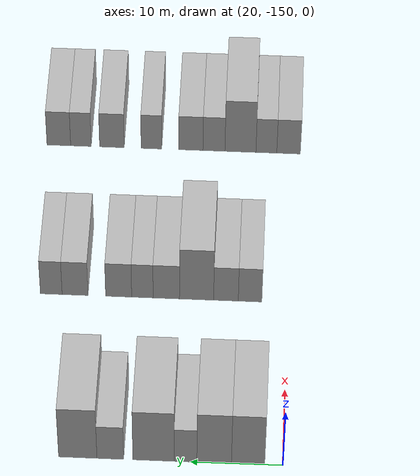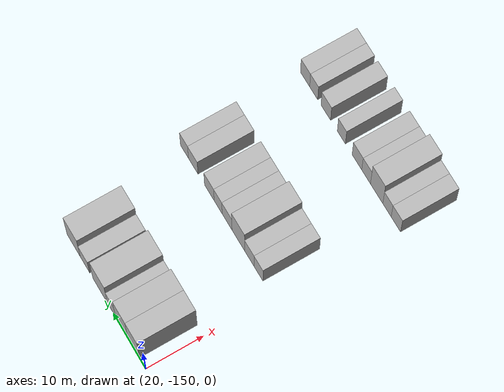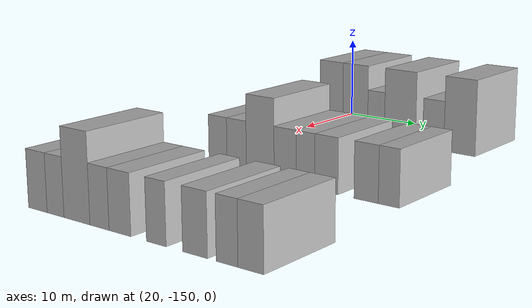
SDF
<sdf version="1.6">
 <world name="default">
  <model name="building_28">
   <static>1</static>
   <pose>25.0000 -146.2379 0 0.000000 0.000000 0.000000</pose>
   <link name="link">
    <pose>0 0 4.50 0 0 0</pose>
    <collision name="collision"><geometry><box><size>10.0000 3.6051 9.0000</size></box></geometry></collision>
    <visual name="visual">
     <cast_shadows>0</cast_shadows>
     <geometry><box><size>10.0000 3.6051 9.0000</size></box></geometry>
     <material>
      <script>
       <uri>model://HANNAS_wall/materials/scripts</uri>
       <uri>model://HANNAS_wall/materials/textures</uri>
       <name>vrc/HANNAS_wall</name>
      </script>
     </material>
    </visual>
   </link>
  </model>
  <model name="building_29">
   <static>1</static>
   <pose>25.0000 -142.5666 0 0.000000 0.000000 0.000000</pose>
   <link name="link">
    <pose>0 0 4.50 0 0 0</pose>
    <collision name="collision"><geometry><box><size>10.0000 3.7375 9.0000</size></box></geometry></collision>
    <visual name="visual">
     <cast_shadows>0</cast_shadows>
     <geometry><box><size>10.0000 3.7375 9.0000</size></box></geometry>
     <material>
      <script>
       <uri>model://HANNAS_wall/materials/scripts</uri>
       <uri>model://HANNAS_wall/materials/textures</uri>
       <name>vrc/HANNAS_wall</name>
      </script>
     </material>
    </visual>
   </link>
  </model>
  <model name="building_30">
   <static>1</static>
   <pose>25.0000 -139.4617 0 0.000000 0.000000 0.000000</pose>
   <link name="link">
    <pose>0 0 3.00 0 0 0</pose>
    <collision name="collision"><geometry><box><size>10.0000 2.4724 6.0000</size></box></geometry></collision>
    <visual name="visual">
     <cast_shadows>0</cast_shadows>
     <geometry><box><size>10.0000 2.4724 6.0000</size></box></geometry>
     <material>
      <script>
       <uri>model://HANNAS_wall/materials/scripts</uri>
       <uri>model://HANNAS_wall/materials/textures</uri>
       <name>vrc/HANNAS_wall</name>
      </script>
     </material>
    </visual>
   </link>
  </model>
  <model name="building_31">
   <static>1</static>
   <pose>25.0000 -135.9966 0 0.000000 0.000000 0.000000</pose>
   <link name="link">
    <pose>0 0 4.50 0 0 0</pose>
    <collision name="collision"><geometry><box><size>10.0000 4.4577 9.0000</size></box></geometry></collision>
    <visual name="visual">
     <cast_shadows>0</cast_shadows>
     <geometry><box><size>10.0000 4.4577 9.0000</size></box></geometry>
     <material>
      <script>
       <uri>model://HANNAS_wall/materials/scripts</uri>
       <uri>model://HANNAS_wall/materials/textures</uri>
       <name>vrc/HANNAS_wall</name>
      </script>
     </material>
    </visual>
   </link>
  </model>
  <model name="building_32">
   <static>1</static>
   <pose>25.0000 -131.3176 0 0.000000 0.000000 0.000000</pose>
   <link name="link">
    <pose>0 0 3.00 0 0 0</pose>
    <collision name="collision"><geometry><box><size>10.0000 2.9004 6.0000</size></box></geometry></collision>
    <visual name="visual">
     <cast_shadows>0</cast_shadows>
     <geometry><box><size>10.0000 2.9004 6.0000</size></box></geometry>
     <material>
      <script>
       <uri>model://HANNAS_wall/materials/scripts</uri>
       <uri>model://HANNAS_wall/materials/textures</uri>
       <name>vrc/HANNAS_wall</name>
      </script>
     </material>
    </visual>
   </link>
  </model>
  <model name="building_33">
   <static>1</static>
   <pose>25.0000 -127.7929 0 0.000000 0.000000 0.000000</pose>
   <link name="link">
    <pose>0 0 4.50 0 0 0</pose>
    <collision name="collision"><geometry><box><size>10.0000 4.1490 9.0000</size></box></geometry></collision>
    <visual name="visual">
     <cast_shadows>0</cast_shadows>
     <geometry><box><size>10.0000 4.1490 9.0000</size></box></geometry>
     <material>
      <script>
       <uri>model://HANNAS_wall/materials/scripts</uri>
       <uri>model://HANNAS_wall/materials/textures</uri>
       <name>vrc/HANNAS_wall</name>
      </script>
     </material>
    </visual>
   </link>
  </model>
  <model name="building_145">
   <static>1</static>
   <pose>47.0000 -145.7853 0 0.000000 0.000000 0.000000</pose>
   <link name="link">
    <pose>0 0 3.00 0 0 0</pose>
    <collision name="collision"><geometry><box><size>10.0000 2.6623 6.0000</size></box></geometry></collision>
    <visual name="visual">
     <cast_shadows>0</cast_shadows>
     <geometry><box><size>10.0000 2.6623 6.0000</size></box></geometry>
     <material>
      <script>
       <uri>model://HANNAS_wall/materials/scripts</uri>
       <uri>model://HANNAS_wall/materials/textures</uri>
       <name>vrc/HANNAS_wall</name>
      </script>
     </material>
    </visual>
   </link>
  </model>
  <model name="building_146">
   <static>1</static>
   <pose>47.0000 -143.0627 0 0.000000 0.000000 0.000000</pose>
   <link name="link">
    <pose>0 0 3.00 0 0 0</pose>
    <collision name="collision"><geometry><box><size>10.0000 2.7829 6.0000</size></box></geometry></collision>
    <visual name="visual">
     <cast_shadows>0</cast_shadows>
     <geometry><box><size>10.0000 2.7829 6.0000</size></box></geometry>
     <material>
      <script>
       <uri>model://HANNAS_wall/materials/scripts</uri>
       <uri>model://HANNAS_wall/materials/textures</uri>
       <name>vrc/HANNAS_wall</name>
      </script>
     </material>
    </visual>
   </link>
  </model>
  <model name="building_147">
   <static>1</static>
   <pose>47.0000 -139.7377 0 0.000000 0.000000 0.000000</pose>
   <link name="link">
    <pose>0 0 4.50 0 0 0</pose>
    <collision name="collision"><geometry><box><size>10.0000 3.8670 9.0000</size></box></geometry></collision>
    <visual name="visual">
     <cast_shadows>0</cast_shadows>
     <geometry><box><size>10.0000 3.8670 9.0000</size></box></geometry>
     <material>
      <script>
       <uri>model://HANNAS_wall/materials/scripts</uri>
       <uri>model://HANNAS_wall/materials/textures</uri>
       <name>vrc/HANNAS_wall</name>
      </script>
     </material>
    </visual>
   </link>
  </model>
  <model name="building_148">
   <static>1</static>
   <pose>47.0000 -136.3143 0 0.000000 0.000000 0.000000</pose>
   <link name="link">
    <pose>0 0 3.00 0 0 0</pose>
    <collision name="collision"><geometry><box><size>10.0000 2.9798 6.0000</size></box></geometry></collision>
    <visual name="visual">
     <cast_shadows>0</cast_shadows>
     <geometry><box><size>10.0000 2.9798 6.0000</size></box></geometry>
     <material>
      <script>
       <uri>model://HANNAS_wall/materials/scripts</uri>
       <uri>model://HANNAS_wall/materials/textures</uri>
       <name>vrc/HANNAS_wall</name>
      </script>
     </material>
    </visual>
   </link>
  </model>
  <model name="building_149">
   <static>1</static>
   <pose>47.0000 -133.6075 0 0.000000 0.000000 0.000000</pose>
   <link name="link">
    <pose>0 0 3.00 0 0 0</pose>
    <collision name="collision"><geometry><box><size>10.0000 2.4339 6.0000</size></box></geometry></collision>
    <visual name="visual">
     <cast_shadows>0</cast_shadows>
     <geometry><box><size>10.0000 2.4339 6.0000</size></box></geometry>
     <material>
      <script>
       <uri>model://HANNAS_wall/materials/scripts</uri>
       <uri>model://HANNAS_wall/materials/textures</uri>
       <name>vrc/HANNAS_wall</name>
      </script>
     </material>
    </visual>
   </link>
  </model>
  <model name="building_150">
   <static>1</static>
   <pose>47.0000 -130.9199 0 0.000000 0.000000 0.000000</pose>
   <link name="link">
    <pose>0 0 3.00 0 0 0</pose>
    <collision name="collision"><geometry><box><size>10.0000 2.9413 6.0000</size></box></geometry></collision>
    <visual name="visual">
     <cast_shadows>0</cast_shadows>
     <geometry><box><size>10.0000 2.9413 6.0000</size></box></geometry>
     <material>
      <script>
       <uri>model://HANNAS_wall/materials/scripts</uri>
       <uri>model://HANNAS_wall/materials/textures</uri>
       <name>vrc/HANNAS_wall</name>
      </script>
     </material>
    </visual>
   </link>
  </model>
  <model name="building_151">
   <static>1</static>
   <pose>47.0000 -125.9823 0 0.000000 0.000000 0.000000</pose>
   <link name="link">
    <pose>0 0 3.00 0 0 0</pose>
    <collision name="collision"><geometry><box><size>10.0000 2.9339 6.0000</size></box></geometry></collision>
    <visual name="visual">
     <cast_shadows>0</cast_shadows>
     <geometry><box><size>10.0000 2.9339 6.0000</size></box></geometry>
     <material>
      <script>
       <uri>model://HANNAS_wall/materials/scripts</uri>
       <uri>model://HANNAS_wall/materials/textures</uri>
       <name>vrc/HANNAS_wall</name>
      </script>
     </material>
    </visual>
   </link>
  </model>
  <model name="building_152">
   <static>1</static>
   <pose>47.0000 -123.2834 0 0.000000 0.000000 0.000000</pose>
   <link name="link">
    <pose>0 0 3.00 0 0 0</pose>
    <collision name="collision"><geometry><box><size>10.0000 2.4640 6.0000</size></box></geometry></collision>
    <visual name="visual">
     <cast_shadows>0</cast_shadows>
     <geometry><box><size>10.0000 2.4640 6.0000</size></box></geometry>
     <material>
      <script>
       <uri>model://HANNAS_wall/materials/scripts</uri>
       <uri>model://HANNAS_wall/materials/textures</uri>
       <name>vrc/HANNAS_wall</name>
      </script>
     </material>
    </visual>
   </link>
  </model>
  <model name="building_271">
   <static>1</static>
   <pose>69.0000 -149.6540 0 0.000000 0.000000 0.000000</pose>
   <link name="link">
    <pose>0 0 3.00 0 0 0</pose>
    <collision name="collision"><geometry><box><size>10.0000 2.7752 6.0000</size></box></geometry></collision>
    <visual name="visual">
     <cast_shadows>0</cast_shadows>
     <geometry><box><size>10.0000 2.7752 6.0000</size></box></geometry>
     <material>
      <script>
       <uri>model://HANNAS_wall/materials/scripts</uri>
       <uri>model://HANNAS_wall/materials/textures</uri>
       <name>vrc/HANNAS_wall</name>
      </script>
     </material>
    </visual>
   </link>
  </model>
  <model name="building_272">
   <static>1</static>
   <pose>69.0000 -147.0400 0 0.000000 0.000000 0.000000</pose>
   <link name="link">
    <pose>0 0 3.00 0 0 0</pose>
    <collision name="collision"><geometry><box><size>10.0000 2.4530 6.0000</size></box></geometry></collision>
    <visual name="visual">
     <cast_shadows>0</cast_shadows>
     <geometry><box><size>10.0000 2.4530 6.0000</size></box></geometry>
     <material>
      <script>
       <uri>model://HANNAS_wall/materials/scripts</uri>
       <uri>model://HANNAS_wall/materials/textures</uri>
       <name>vrc/HANNAS_wall</name>
      </script>
     </material>
    </visual>
   </link>
  </model>
  <model name="building_273">
   <static>1</static>
   <pose>69.0000 -143.9868 0 0.000000 0.000000 0.000000</pose>
   <link name="link">
    <pose>0 0 4.50 0 0 0</pose>
    <collision name="collision"><geometry><box><size>10.0000 3.6532 9.0000</size></box></geometry></collision>
    <visual name="visual">
     <cast_shadows>0</cast_shadows>
     <geometry><box><size>10.0000 3.6532 9.0000</size></box></geometry>
     <material>
      <script>
       <uri>model://HANNAS_wall/materials/scripts</uri>
       <uri>model://HANNAS_wall/materials/textures</uri>
       <name>vrc/HANNAS_wall</name>
      </script>
     </material>
    </visual>
   </link>
  </model>
  <model name="building_274">
   <static>1</static>
   <pose>69.0000 -140.8634 0 0.000000 0.000000 0.000000</pose>
   <link name="link">
    <pose>0 0 3.00 0 0 0</pose>
    <collision name="collision"><geometry><box><size>10.0000 2.5936 6.0000</size></box></geometry></collision>
    <visual name="visual">
     <cast_shadows>0</cast_shadows>
     <geometry><box><size>10.0000 2.5936 6.0000</size></box></geometry>
     <material>
      <script>
       <uri>model://HANNAS_wall/materials/scripts</uri>
       <uri>model://HANNAS_wall/materials/textures</uri>
       <name>vrc/HANNAS_wall</name>
      </script>
     </material>
    </visual>
   </link>
  </model>
  <model name="building_275">
   <static>1</static>
   <pose>69.0000 -138.1356 0 0.000000 0.000000 0.000000</pose>
   <link name="link">
    <pose>0 0 3.00 0 0 0</pose>
    <collision name="collision"><geometry><box><size>10.0000 2.8620 6.0000</size></box></geometry></collision>
    <visual name="visual">
     <cast_shadows>0</cast_shadows>
     <geometry><box><size>10.0000 2.8620 6.0000</size></box></geometry>
     <material>
      <script>
       <uri>model://HANNAS_wall/materials/scripts</uri>
       <uri>model://HANNAS_wall/materials/textures</uri>
       <name>vrc/HANNAS_wall</name>
      </script>
     </material>
    </visual>
   </link>
  </model>
  <model name="building_276">
   <static>1</static>
   <pose>69.0000 -133.4883 0 0.000000 0.000000 0.000000</pose>
   <link name="link">
    <pose>0 0 3.00 0 0 0</pose>
    <collision name="collision"><geometry><box><size>10.0000 2.4327 6.0000</size></box></geometry></collision>
    <visual name="visual">
     <cast_shadows>0</cast_shadows>
     <geometry><box><size>10.0000 2.4327 6.0000</size></box></geometry>
     <material>
      <script>
       <uri>model://HANNAS_wall/materials/scripts</uri>
       <uri>model://HANNAS_wall/materials/textures</uri>
       <name>vrc/HANNAS_wall</name>
      </script>
     </material>
    </visual>
   </link>
  </model>
  <model name="building_277">
   <static>1</static>
   <pose>69.0000 -128.8216 0 0.000000 0.000000 0.000000</pose>
   <link name="link">
    <pose>0 0 3.00 0 0 0</pose>
    <collision name="collision"><geometry><box><size>10.0000 2.9006 6.0000</size></box></geometry></collision>
    <visual name="visual">
     <cast_shadows>0</cast_shadows>
     <geometry><box><size>10.0000 2.9006 6.0000</size></box></geometry>
     <material>
      <script>
       <uri>model://HANNAS_wall/materials/scripts</uri>
       <uri>model://HANNAS_wall/materials/textures</uri>
       <name>vrc/HANNAS_wall</name>
      </script>
     </material>
    </visual>
   </link>
  </model>
  <model name="building_278">
   <static>1</static>
   <pose>69.0000 -125.1584 0 0.000000 0.000000 0.000000</pose>
   <link name="link">
    <pose>0 0 3.00 0 0 0</pose>
    <collision name="collision"><geometry><box><size>10.0000 2.4259 6.0000</size></box></geometry></collision>
    <visual name="visual">
     <cast_shadows>0</cast_shadows>
     <geometry><box><size>10.0000 2.4259 6.0000</size></box></geometry>
     <material>
      <script>
       <uri>model://HANNAS_wall/materials/scripts</uri>
       <uri>model://HANNAS_wall/materials/textures</uri>
       <name>vrc/HANNAS_wall</name>
      </script>
     </material>
    </visual>
   </link>
  </model>
  <model name="building_279">
   <static>1</static>
   <pose>69.0000 -122.5473 0 0.000000 0.000000 0.000000</pose>
   <link name="link">
    <pose>0 0 3.00 0 0 0</pose>
    <collision name="collision"><geometry><box><size>10.0000 2.7965 6.0000</size></box></geometry></collision>
    <visual name="visual">
     <cast_shadows>0</cast_shadows>
     <geometry><box><size>10.0000 2.7965 6.0000</size></box></geometry>
     <material>
      <script>
       <uri>model://HANNAS_wall/materials/scripts</uri>
       <uri>model://HANNAS_wall/materials/textures</uri>
       <name>vrc/HANNAS_wall</name>
      </script>
     </material>
    </visual>
   </link>
  </model>
 </world>
</sdf>
